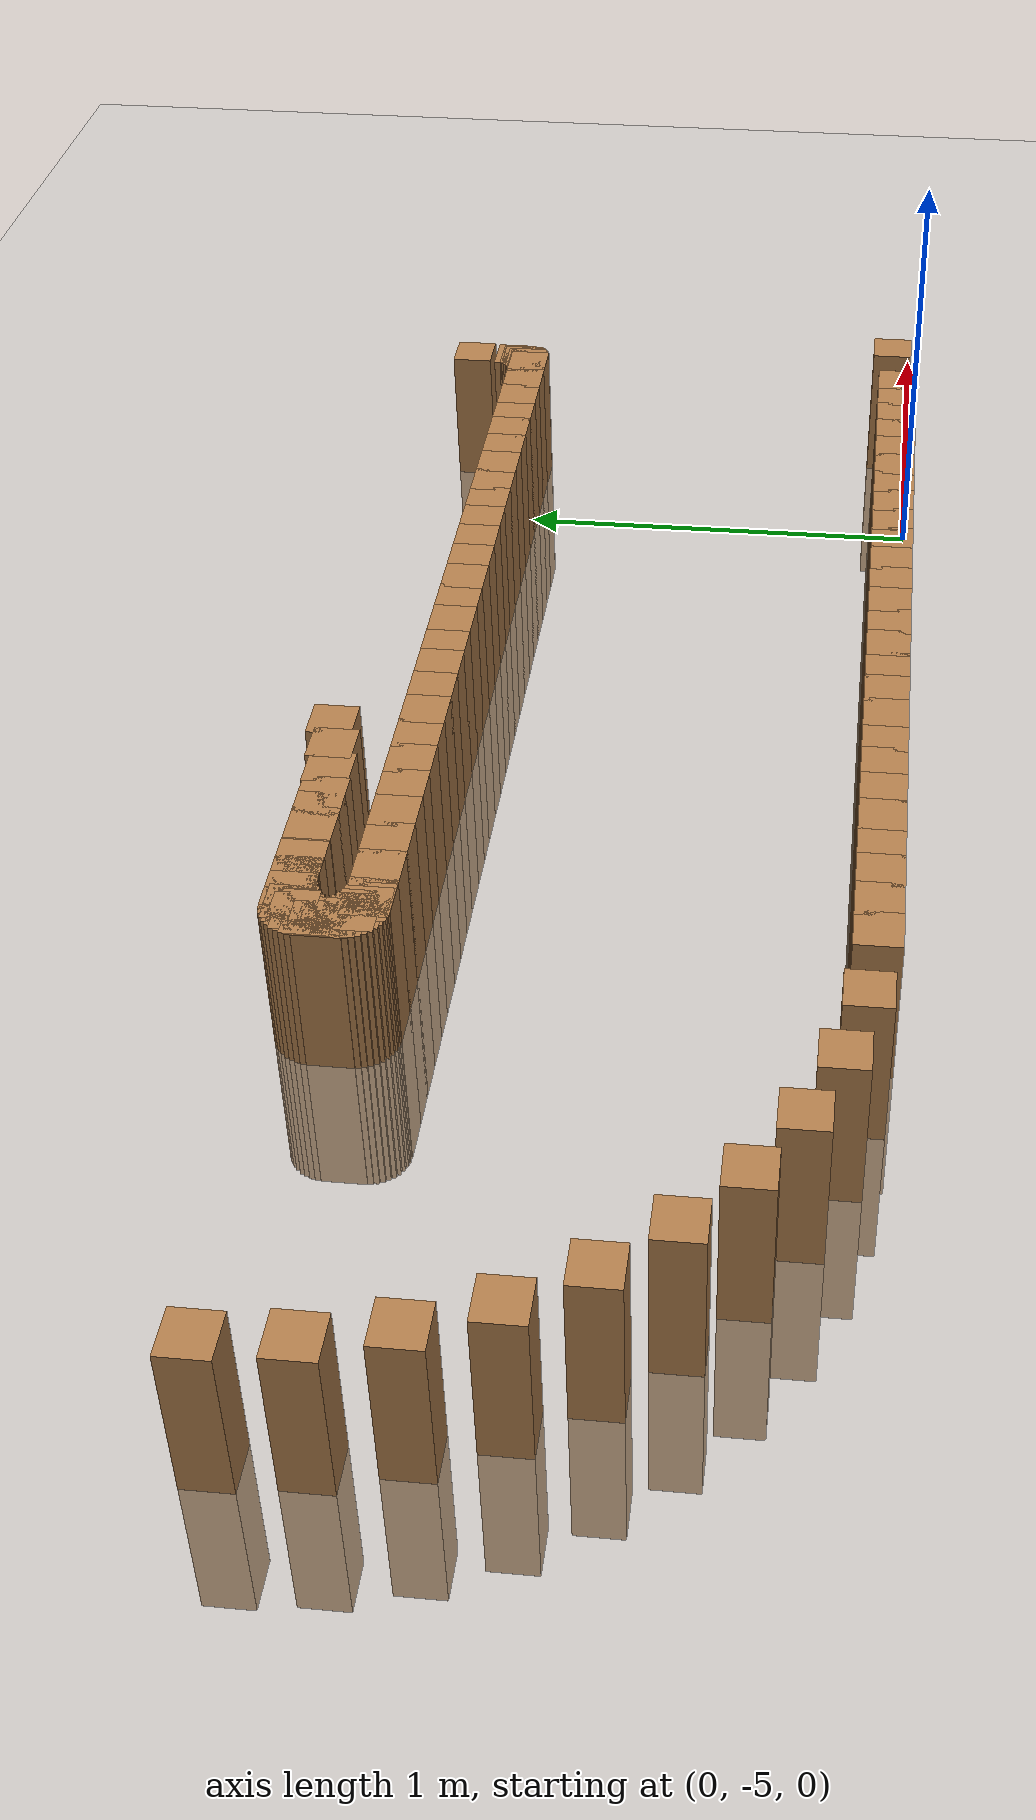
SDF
<sdf version="1.6">
 <world name="default">
  <model name="ground_plane">
   <static>1</static>
   <link name="link">
    <collision name="collision">
     <geometry><plane><normal>0 0 1</normal><size>100 100</size></plane></geometry>
     <surface><friction><ode><mu>100</mu><mu2>50</mu2></ode></friction></surface>
    </collision>
    <visual name="visual">
     <cast_shadows>0</cast_shadows>
     <geometry><plane><normal>0 0 1</normal><size>100 100</size></plane></geometry>
     <material>
      <script><uri>file://media/materials/scripts/gazebo.material</uri><name>Gazebo/Grey</name></script>
     </material>
    </visual>
   </link>
  </model>
  <model name="track">
   <link name="inner_389">
    <pose>-1.399631 -3.767061 0.000000 0 -0 0</pose>
    <collision name="collision"><geometry><box><size>0.1 0.1 0.7</size></box></geometry></collision>
    <visual name="visual">
     <geometry><box><size>0.1 0.1 0.7</size></box></geometry>
     <material>
      <script><uri>file://media/materials/scripts/gazebo.material</uri><name>Gazebo/Wood</name></script>
     </material>
    </visual>
   </link>
   <link name="inner_390">
    <pose>-1.481734 -3.783823 0.000000 0 -0 0</pose>
    <collision name="collision"><geometry><box><size>0.1 0.1 0.7</size></box></geometry></collision>
    <visual name="visual">
     <geometry><box><size>0.1 0.1 0.7</size></box></geometry>
     <material>
      <script><uri>file://media/materials/scripts/gazebo.material</uri><name>Gazebo/Wood</name></script>
     </material>
    </visual>
   </link>
   <link name="inner_391">
    <pose>-1.564920 -3.793923 0.000000 0 -0 0</pose>
    <collision name="collision"><geometry><box><size>0.1 0.1 0.7</size></box></geometry></collision>
    <visual name="visual">
     <geometry><box><size>0.1 0.1 0.7</size></box></geometry>
     <material>
      <script><uri>file://media/materials/scripts/gazebo.material</uri><name>Gazebo/Wood</name></script>
     </material>
    </visual>
   </link>
   <link name="inner_392">
    <pose>-1.648649 -3.797297 0.000000 0 -0 0</pose>
    <collision name="collision"><geometry><box><size>0.1 0.1 0.7</size></box></geometry></collision>
    <visual name="visual">
     <geometry><box><size>0.1 0.1 0.7</size></box></geometry>
     <material>
      <script><uri>file://media/materials/scripts/gazebo.material</uri><name>Gazebo/Wood</name></script>
     </material>
    </visual>
   </link>
   <link name="inner_393">
    <pose>-1.700450 -3.797297 0.000000 0 -0 0</pose>
    <collision name="collision"><geometry><box><size>0.1 0.1 0.7</size></box></geometry></collision>
    <visual name="visual">
     <geometry><box><size>0.1 0.1 0.7</size></box></geometry>
     <material>
      <script><uri>file://media/materials/scripts/gazebo.material</uri><name>Gazebo/Wood</name></script>
     </material>
    </visual>
   </link>
   <link name="inner_394">
    <pose>-1.752252 -3.797297 0.000000 0 -0 0</pose>
    <collision name="collision"><geometry><box><size>0.1 0.1 0.7</size></box></geometry></collision>
    <visual name="visual">
     <geometry><box><size>0.1 0.1 0.7</size></box></geometry>
     <material>
      <script><uri>file://media/materials/scripts/gazebo.material</uri><name>Gazebo/Wood</name></script>
     </material>
    </visual>
   </link>
   <link name="inner_395">
    <pose>-1.804054 -3.797297 0.000000 0 -0 0</pose>
    <collision name="collision"><geometry><box><size>0.1 0.1 0.7</size></box></geometry></collision>
    <visual name="visual">
     <geometry><box><size>0.1 0.1 0.7</size></box></geometry>
     <material>
      <script><uri>file://media/materials/scripts/gazebo.material</uri><name>Gazebo/Wood</name></script>
     </material>
    </visual>
   </link>
   <link name="inner_396">
    <pose>-1.855856 -3.797297 0.000000 0 -0 0</pose>
    <collision name="collision"><geometry><box><size>0.1 0.1 0.7</size></box></geometry></collision>
    <visual name="visual">
     <geometry><box><size>0.1 0.1 0.7</size></box></geometry>
     <material>
      <script><uri>file://media/materials/scripts/gazebo.material</uri><name>Gazebo/Wood</name></script>
     </material>
    </visual>
   </link>
   <link name="inner_397">
    <pose>-1.907658 -3.797297 0.000000 0 -0 0</pose>
    <collision name="collision"><geometry><box><size>0.1 0.1 0.7</size></box></geometry></collision>
    <visual name="visual">
     <geometry><box><size>0.1 0.1 0.7</size></box></geometry>
     <material>
      <script><uri>file://media/materials/scripts/gazebo.material</uri><name>Gazebo/Wood</name></script>
     </material>
    </visual>
   </link>
   <link name="inner_398">
    <pose>-1.959459 -3.797297 0.000000 0 -0 0</pose>
    <collision name="collision"><geometry><box><size>0.1 0.1 0.7</size></box></geometry></collision>
    <visual name="visual">
     <geometry><box><size>0.1 0.1 0.7</size></box></geometry>
     <material>
      <script><uri>file://media/materials/scripts/gazebo.material</uri><name>Gazebo/Wood</name></script>
     </material>
    </visual>
   </link>
   <link name="inner_399">
    <pose>-1.972143 -3.798296 0.000000 0 -0 0</pose>
    <collision name="collision"><geometry><box><size>0.1 0.1 0.7</size></box></geometry></collision>
    <visual name="visual">
     <geometry><box><size>0.1 0.1 0.7</size></box></geometry>
     <material>
      <script><uri>file://media/materials/scripts/gazebo.material</uri><name>Gazebo/Wood</name></script>
     </material>
    </visual>
   </link>
   <link name="inner_400">
    <pose>-1.984515 -3.801266 0.000000 0 -0 0</pose>
    <collision name="collision"><geometry><box><size>0.1 0.1 0.7</size></box></geometry></collision>
    <visual name="visual">
     <geometry><box><size>0.1 0.1 0.7</size></box></geometry>
     <material>
      <script><uri>file://media/materials/scripts/gazebo.material</uri><name>Gazebo/Wood</name></script>
     </material>
    </visual>
   </link>
   <link name="inner_401">
    <pose>-1.996269 -3.806135 0.000000 0 -0 0</pose>
    <collision name="collision"><geometry><box><size>0.1 0.1 0.7</size></box></geometry></collision>
    <visual name="visual">
     <geometry><box><size>0.1 0.1 0.7</size></box></geometry>
     <material>
      <script><uri>file://media/materials/scripts/gazebo.material</uri><name>Gazebo/Wood</name></script>
     </material>
    </visual>
   </link>
   <link name="inner_402">
    <pose>-2.007118 -3.812782 0.000000 0 -0 0</pose>
    <collision name="collision"><geometry><box><size>0.1 0.1 0.7</size></box></geometry></collision>
    <visual name="visual">
     <geometry><box><size>0.1 0.1 0.7</size></box></geometry>
     <material>
      <script><uri>file://media/materials/scripts/gazebo.material</uri><name>Gazebo/Wood</name></script>
     </material>
    </visual>
   </link>
   <link name="inner_403">
    <pose>-2.016792 -3.821045 0.000000 0 -0 0</pose>
    <collision name="collision"><geometry><box><size>0.1 0.1 0.7</size></box></geometry></collision>
    <visual name="visual">
     <geometry><box><size>0.1 0.1 0.7</size></box></geometry>
     <material>
      <script><uri>file://media/materials/scripts/gazebo.material</uri><name>Gazebo/Wood</name></script>
     </material>
    </visual>
   </link>
   <link name="inner_404">
    <pose>-2.025055 -3.830720 0.000000 0 -0 0</pose>
    <collision name="collision"><geometry><box><size>0.1 0.1 0.7</size></box></geometry></collision>
    <visual name="visual">
     <geometry><box><size>0.1 0.1 0.7</size></box></geometry>
     <material>
      <script><uri>file://media/materials/scripts/gazebo.material</uri><name>Gazebo/Wood</name></script>
     </material>
    </visual>
   </link>
   <link name="inner_405">
    <pose>-2.031703 -3.841568 0.000000 0 -0 0</pose>
    <collision name="collision"><geometry><box><size>0.1 0.1 0.7</size></box></geometry></collision>
    <visual name="visual">
     <geometry><box><size>0.1 0.1 0.7</size></box></geometry>
     <material>
      <script><uri>file://media/materials/scripts/gazebo.material</uri><name>Gazebo/Wood</name></script>
     </material>
    </visual>
   </link>
   <link name="inner_406">
    <pose>-2.036572 -3.853323 0.000000 0 -0 0</pose>
    <collision name="collision"><geometry><box><size>0.1 0.1 0.7</size></box></geometry></collision>
    <visual name="visual">
     <geometry><box><size>0.1 0.1 0.7</size></box></geometry>
     <material>
      <script><uri>file://media/materials/scripts/gazebo.material</uri><name>Gazebo/Wood</name></script>
     </material>
    </visual>
   </link>
   <link name="inner_407">
    <pose>-2.039542 -3.865695 0.000000 0 -0 0</pose>
    <collision name="collision"><geometry><box><size>0.1 0.1 0.7</size></box></geometry></collision>
    <visual name="visual">
     <geometry><box><size>0.1 0.1 0.7</size></box></geometry>
     <material>
      <script><uri>file://media/materials/scripts/gazebo.material</uri><name>Gazebo/Wood</name></script>
     </material>
    </visual>
   </link>
   <link name="inner_408">
    <pose>-2.040541 -3.878378 0.000000 0 -0 0</pose>
    <collision name="collision"><geometry><box><size>0.1 0.1 0.7</size></box></geometry></collision>
    <visual name="visual">
     <geometry><box><size>0.1 0.1 0.7</size></box></geometry>
     <material>
      <script><uri>file://media/materials/scripts/gazebo.material</uri><name>Gazebo/Wood</name></script>
     </material>
    </visual>
   </link>
   <link name="inner_409">
    <pose>-2.039542 -3.891062 0.000000 0 -0 0</pose>
    <collision name="collision"><geometry><box><size>0.1 0.1 0.7</size></box></geometry></collision>
    <visual name="visual">
     <geometry><box><size>0.1 0.1 0.7</size></box></geometry>
     <material>
      <script><uri>file://media/materials/scripts/gazebo.material</uri><name>Gazebo/Wood</name></script>
     </material>
    </visual>
   </link>
   <link name="inner_410">
    <pose>-2.036572 -3.903434 0.000000 0 -0 0</pose>
    <collision name="collision"><geometry><box><size>0.1 0.1 0.7</size></box></geometry></collision>
    <visual name="visual">
     <geometry><box><size>0.1 0.1 0.7</size></box></geometry>
     <material>
      <script><uri>file://media/materials/scripts/gazebo.material</uri><name>Gazebo/Wood</name></script>
     </material>
    </visual>
   </link>
   <link name="inner_411">
    <pose>-2.031703 -3.915188 0.000000 0 -0 0</pose>
    <collision name="collision"><geometry><box><size>0.1 0.1 0.7</size></box></geometry></collision>
    <visual name="visual">
     <geometry><box><size>0.1 0.1 0.7</size></box></geometry>
     <material>
      <script><uri>file://media/materials/scripts/gazebo.material</uri><name>Gazebo/Wood</name></script>
     </material>
    </visual>
   </link>
   <link name="inner_412">
    <pose>-2.025055 -3.926037 0.000000 0 -0 0</pose>
    <collision name="collision"><geometry><box><size>0.1 0.1 0.7</size></box></geometry></collision>
    <visual name="visual">
     <geometry><box><size>0.1 0.1 0.7</size></box></geometry>
     <material>
      <script><uri>file://media/materials/scripts/gazebo.material</uri><name>Gazebo/Wood</name></script>
     </material>
    </visual>
   </link>
   <link name="inner_413">
    <pose>-2.016792 -3.935711 0.000000 0 -0 0</pose>
    <collision name="collision"><geometry><box><size>0.1 0.1 0.7</size></box></geometry></collision>
    <visual name="visual">
     <geometry><box><size>0.1 0.1 0.7</size></box></geometry>
     <material>
      <script><uri>file://media/materials/scripts/gazebo.material</uri><name>Gazebo/Wood</name></script>
     </material>
    </visual>
   </link>
   <link name="inner_414">
    <pose>-2.007118 -3.943974 0.000000 0 -0 0</pose>
    <collision name="collision"><geometry><box><size>0.1 0.1 0.7</size></box></geometry></collision>
    <visual name="visual">
     <geometry><box><size>0.1 0.1 0.7</size></box></geometry>
     <material>
      <script><uri>file://media/materials/scripts/gazebo.material</uri><name>Gazebo/Wood</name></script>
     </material>
    </visual>
   </link>
   <link name="inner_415">
    <pose>-1.996269 -3.950622 0.000000 0 -0 0</pose>
    <collision name="collision"><geometry><box><size>0.1 0.1 0.7</size></box></geometry></collision>
    <visual name="visual">
     <geometry><box><size>0.1 0.1 0.7</size></box></geometry>
     <material>
      <script><uri>file://media/materials/scripts/gazebo.material</uri><name>Gazebo/Wood</name></script>
     </material>
    </visual>
   </link>
   <link name="inner_416">
    <pose>-1.984515 -3.955491 0.000000 0 -0 0</pose>
    <collision name="collision"><geometry><box><size>0.1 0.1 0.7</size></box></geometry></collision>
    <visual name="visual">
     <geometry><box><size>0.1 0.1 0.7</size></box></geometry>
     <material>
      <script><uri>file://media/materials/scripts/gazebo.material</uri><name>Gazebo/Wood</name></script>
     </material>
    </visual>
   </link>
   <link name="inner_417">
    <pose>-1.972143 -3.958461 0.000000 0 -0 0</pose>
    <collision name="collision"><geometry><box><size>0.1 0.1 0.7</size></box></geometry></collision>
    <visual name="visual">
     <geometry><box><size>0.1 0.1 0.7</size></box></geometry>
     <material>
      <script><uri>file://media/materials/scripts/gazebo.material</uri><name>Gazebo/Wood</name></script>
     </material>
    </visual>
   </link>
   <link name="inner_418">
    <pose>-1.959459 -3.959459 0.000000 0 -0 0</pose>
    <collision name="collision"><geometry><box><size>0.1 0.1 0.7</size></box></geometry></collision>
    <visual name="visual">
     <geometry><box><size>0.1 0.1 0.7</size></box></geometry>
     <material>
      <script><uri>file://media/materials/scripts/gazebo.material</uri><name>Gazebo/Wood</name></script>
     </material>
    </visual>
   </link>
   <link name="inner_419">
    <pose>-1.871351 -3.959459 0.000000 0 -0 0</pose>
    <collision name="collision"><geometry><box><size>0.1 0.1 0.7</size></box></geometry></collision>
    <visual name="visual">
     <geometry><box><size>0.1 0.1 0.7</size></box></geometry>
     <material>
      <script><uri>file://media/materials/scripts/gazebo.material</uri><name>Gazebo/Wood</name></script>
     </material>
    </visual>
   </link>
   <link name="inner_420">
    <pose>-1.783243 -3.959459 0.000000 0 -0 0</pose>
    <collision name="collision"><geometry><box><size>0.1 0.1 0.7</size></box></geometry></collision>
    <visual name="visual">
     <geometry><box><size>0.1 0.1 0.7</size></box></geometry>
     <material>
      <script><uri>file://media/materials/scripts/gazebo.material</uri><name>Gazebo/Wood</name></script>
     </material>
    </visual>
   </link>
   <link name="inner_421">
    <pose>-1.695135 -3.959459 0.000000 0 -0 0</pose>
    <collision name="collision"><geometry><box><size>0.1 0.1 0.7</size></box></geometry></collision>
    <visual name="visual">
     <geometry><box><size>0.1 0.1 0.7</size></box></geometry>
     <material>
      <script><uri>file://media/materials/scripts/gazebo.material</uri><name>Gazebo/Wood</name></script>
     </material>
    </visual>
   </link>
   <link name="inner_422">
    <pose>-1.607027 -3.959459 0.000000 0 -0 0</pose>
    <collision name="collision"><geometry><box><size>0.1 0.1 0.7</size></box></geometry></collision>
    <visual name="visual">
     <geometry><box><size>0.1 0.1 0.7</size></box></geometry>
     <material>
      <script><uri>file://media/materials/scripts/gazebo.material</uri><name>Gazebo/Wood</name></script>
     </material>
    </visual>
   </link>
   <link name="inner_423">
    <pose>-1.518919 -3.959459 0.000000 0 -0 0</pose>
    <collision name="collision"><geometry><box><size>0.1 0.1 0.7</size></box></geometry></collision>
    <visual name="visual">
     <geometry><box><size>0.1 0.1 0.7</size></box></geometry>
     <material>
      <script><uri>file://media/materials/scripts/gazebo.material</uri><name>Gazebo/Wood</name></script>
     </material>
    </visual>
   </link>
   <link name="inner_424">
    <pose>-1.430811 -3.959459 0.000000 0 -0 0</pose>
    <collision name="collision"><geometry><box><size>0.1 0.1 0.7</size></box></geometry></collision>
    <visual name="visual">
     <geometry><box><size>0.1 0.1 0.7</size></box></geometry>
     <material>
      <script><uri>file://media/materials/scripts/gazebo.material</uri><name>Gazebo/Wood</name></script>
     </material>
    </visual>
   </link>
   <link name="inner_425">
    <pose>-1.342703 -3.959459 0.000000 0 -0 0</pose>
    <collision name="collision"><geometry><box><size>0.1 0.1 0.7</size></box></geometry></collision>
    <visual name="visual">
     <geometry><box><size>0.1 0.1 0.7</size></box></geometry>
     <material>
      <script><uri>file://media/materials/scripts/gazebo.material</uri><name>Gazebo/Wood</name></script>
     </material>
    </visual>
   </link>
   <link name="inner_426">
    <pose>-1.254595 -3.959459 0.000000 0 -0 0</pose>
    <collision name="collision"><geometry><box><size>0.1 0.1 0.7</size></box></geometry></collision>
    <visual name="visual">
     <geometry><box><size>0.1 0.1 0.7</size></box></geometry>
     <material>
      <script><uri>file://media/materials/scripts/gazebo.material</uri><name>Gazebo/Wood</name></script>
     </material>
    </visual>
   </link>
   <link name="inner_427">
    <pose>-1.166486 -3.959459 0.000000 0 -0 0</pose>
    <collision name="collision"><geometry><box><size>0.1 0.1 0.7</size></box></geometry></collision>
    <visual name="visual">
     <geometry><box><size>0.1 0.1 0.7</size></box></geometry>
     <material>
      <script><uri>file://media/materials/scripts/gazebo.material</uri><name>Gazebo/Wood</name></script>
     </material>
    </visual>
   </link>
   <link name="inner_428">
    <pose>-1.078378 -3.959459 0.000000 0 -0 0</pose>
    <collision name="collision"><geometry><box><size>0.1 0.1 0.7</size></box></geometry></collision>
    <visual name="visual">
     <geometry><box><size>0.1 0.1 0.7</size></box></geometry>
     <material>
      <script><uri>file://media/materials/scripts/gazebo.material</uri><name>Gazebo/Wood</name></script>
     </material>
    </visual>
   </link>
   <link name="inner_429">
    <pose>-0.990270 -3.959459 0.000000 0 -0 0</pose>
    <collision name="collision"><geometry><box><size>0.1 0.1 0.7</size></box></geometry></collision>
    <visual name="visual">
     <geometry><box><size>0.1 0.1 0.7</size></box></geometry>
     <material>
      <script><uri>file://media/materials/scripts/gazebo.material</uri><name>Gazebo/Wood</name></script>
     </material>
    </visual>
   </link>
   <link name="inner_430">
    <pose>-0.902162 -3.959459 0.000000 0 -0 0</pose>
    <collision name="collision"><geometry><box><size>0.1 0.1 0.7</size></box></geometry></collision>
    <visual name="visual">
     <geometry><box><size>0.1 0.1 0.7</size></box></geometry>
     <material>
      <script><uri>file://media/materials/scripts/gazebo.material</uri><name>Gazebo/Wood</name></script>
     </material>
    </visual>
   </link>
   <link name="inner_431">
    <pose>-0.814054 -3.959459 0.000000 0 -0 0</pose>
    <collision name="collision"><geometry><box><size>0.1 0.1 0.7</size></box></geometry></collision>
    <visual name="visual">
     <geometry><box><size>0.1 0.1 0.7</size></box></geometry>
     <material>
      <script><uri>file://media/materials/scripts/gazebo.material</uri><name>Gazebo/Wood</name></script>
     </material>
    </visual>
   </link>
   <link name="inner_432">
    <pose>-0.725946 -3.959459 0.000000 0 -0 0</pose>
    <collision name="collision"><geometry><box><size>0.1 0.1 0.7</size></box></geometry></collision>
    <visual name="visual">
     <geometry><box><size>0.1 0.1 0.7</size></box></geometry>
     <material>
      <script><uri>file://media/materials/scripts/gazebo.material</uri><name>Gazebo/Wood</name></script>
     </material>
    </visual>
   </link>
   <link name="inner_433">
    <pose>-0.637838 -3.959459 0.000000 0 -0 0</pose>
    <collision name="collision"><geometry><box><size>0.1 0.1 0.7</size></box></geometry></collision>
    <visual name="visual">
     <geometry><box><size>0.1 0.1 0.7</size></box></geometry>
     <material>
      <script><uri>file://media/materials/scripts/gazebo.material</uri><name>Gazebo/Wood</name></script>
     </material>
    </visual>
   </link>
   <link name="inner_434">
    <pose>-0.549730 -3.959459 0.000000 0 -0 0</pose>
    <collision name="collision"><geometry><box><size>0.1 0.1 0.7</size></box></geometry></collision>
    <visual name="visual">
     <geometry><box><size>0.1 0.1 0.7</size></box></geometry>
     <material>
      <script><uri>file://media/materials/scripts/gazebo.material</uri><name>Gazebo/Wood</name></script>
     </material>
    </visual>
   </link>
   <link name="inner_435">
    <pose>-0.461622 -3.959459 0.000000 0 -0 0</pose>
    <collision name="collision"><geometry><box><size>0.1 0.1 0.7</size></box></geometry></collision>
    <visual name="visual">
     <geometry><box><size>0.1 0.1 0.7</size></box></geometry>
     <material>
      <script><uri>file://media/materials/scripts/gazebo.material</uri><name>Gazebo/Wood</name></script>
     </material>
    </visual>
   </link>
   <link name="inner_436">
    <pose>-0.373514 -3.959459 0.000000 0 -0 0</pose>
    <collision name="collision"><geometry><box><size>0.1 0.1 0.7</size></box></geometry></collision>
    <visual name="visual">
     <geometry><box><size>0.1 0.1 0.7</size></box></geometry>
     <material>
      <script><uri>file://media/materials/scripts/gazebo.material</uri><name>Gazebo/Wood</name></script>
     </material>
    </visual>
   </link>
   <link name="inner_437">
    <pose>-0.285405 -3.959459 0.000000 0 -0 0</pose>
    <collision name="collision"><geometry><box><size>0.1 0.1 0.7</size></box></geometry></collision>
    <visual name="visual">
     <geometry><box><size>0.1 0.1 0.7</size></box></geometry>
     <material>
      <script><uri>file://media/materials/scripts/gazebo.material</uri><name>Gazebo/Wood</name></script>
     </material>
    </visual>
   </link>
   <link name="inner_438">
    <pose>-0.197297 -3.959459 0.000000 0 -0 0</pose>
    <collision name="collision"><geometry><box><size>0.1 0.1 0.7</size></box></geometry></collision>
    <visual name="visual">
     <geometry><box><size>0.1 0.1 0.7</size></box></geometry>
     <material>
      <script><uri>file://media/materials/scripts/gazebo.material</uri><name>Gazebo/Wood</name></script>
     </material>
    </visual>
   </link>
   <link name="inner_439">
    <pose>-0.109189 -3.959459 0.000000 0 -0 0</pose>
    <collision name="collision"><geometry><box><size>0.1 0.1 0.7</size></box></geometry></collision>
    <visual name="visual">
     <geometry><box><size>0.1 0.1 0.7</size></box></geometry>
     <material>
      <script><uri>file://media/materials/scripts/gazebo.material</uri><name>Gazebo/Wood</name></script>
     </material>
    </visual>
   </link>
   <link name="inner_440">
    <pose>-0.021081 -3.959459 0.000000 0 -0 0</pose>
    <collision name="collision"><geometry><box><size>0.1 0.1 0.7</size></box></geometry></collision>
    <visual name="visual">
     <geometry><box><size>0.1 0.1 0.7</size></box></geometry>
     <material>
      <script><uri>file://media/materials/scripts/gazebo.material</uri><name>Gazebo/Wood</name></script>
     </material>
    </visual>
   </link>
   <link name="inner_441">
    <pose>0.067027 -3.959459 0.000000 0 -0 0</pose>
    <collision name="collision"><geometry><box><size>0.1 0.1 0.7</size></box></geometry></collision>
    <visual name="visual">
     <geometry><box><size>0.1 0.1 0.7</size></box></geometry>
     <material>
      <script><uri>file://media/materials/scripts/gazebo.material</uri><name>Gazebo/Wood</name></script>
     </material>
    </visual>
   </link>
   <link name="inner_442">
    <pose>0.155135 -3.959459 0.000000 0 -0 0</pose>
    <collision name="collision"><geometry><box><size>0.1 0.1 0.7</size></box></geometry></collision>
    <visual name="visual">
     <geometry><box><size>0.1 0.1 0.7</size></box></geometry>
     <material>
      <script><uri>file://media/materials/scripts/gazebo.material</uri><name>Gazebo/Wood</name></script>
     </material>
    </visual>
   </link>
   <link name="inner_443">
    <pose>0.243243 -3.959459 0.000000 0 -0 0</pose>
    <collision name="collision"><geometry><box><size>0.1 0.1 0.7</size></box></geometry></collision>
    <visual name="visual">
     <geometry><box><size>0.1 0.1 0.7</size></box></geometry>
     <material>
      <script><uri>file://media/materials/scripts/gazebo.material</uri><name>Gazebo/Wood</name></script>
     </material>
    </visual>
   </link>
   <link name="inner_444">
    <pose>0.251094 -3.958844 0.000000 0 -0 0</pose>
    <collision name="collision"><geometry><box><size>0.1 0.1 0.7</size></box></geometry></collision>
    <visual name="visual">
     <geometry><box><size>0.1 0.1 0.7</size></box></geometry>
     <material>
      <script><uri>file://media/materials/scripts/gazebo.material</uri><name>Gazebo/Wood</name></script>
     </material>
    </visual>
   </link>
   <link name="inner_445">
    <pose>0.259812 -3.956474 0.000000 0 -0 0</pose>
    <collision name="collision"><geometry><box><size>0.1 0.1 0.7</size></box></geometry></collision>
    <visual name="visual">
     <geometry><box><size>0.1 0.1 0.7</size></box></geometry>
     <material>
      <script><uri>file://media/materials/scripts/gazebo.material</uri><name>Gazebo/Wood</name></script>
     </material>
    </visual>
   </link>
   <link name="inner_446">
    <pose>0.263514 -3.954028 0.000000 0 -0 0</pose>
    <collision name="collision"><geometry><box><size>0.1 0.1 0.7</size></box></geometry></collision>
    <visual name="visual">
     <geometry><box><size>0.1 0.1 0.7</size></box></geometry>
     <material>
      <script><uri>file://media/materials/scripts/gazebo.material</uri><name>Gazebo/Wood</name></script>
     </material>
    </visual>
   </link>
   <link name="inner_447">
    <pose>0.269302 -3.949975 0.000000 0 -0 0</pose>
    <collision name="collision"><geometry><box><size>0.1 0.1 0.7</size></box></geometry></collision>
    <visual name="visual">
     <geometry><box><size>0.1 0.1 0.7</size></box></geometry>
     <material>
      <script><uri>file://media/materials/scripts/gazebo.material</uri><name>Gazebo/Wood</name></script>
     </material>
    </visual>
   </link>
   <link name="inner_448">
    <pose>0.274299 -3.944978 0.000000 0 -0 0</pose>
    <collision name="collision"><geometry><box><size>0.1 0.1 0.7</size></box></geometry></collision>
    <visual name="visual">
     <geometry><box><size>0.1 0.1 0.7</size></box></geometry>
     <material>
      <script><uri>file://media/materials/scripts/gazebo.material</uri><name>Gazebo/Wood</name></script>
     </material>
    </visual>
   </link>
   <link name="inner_449">
    <pose>0.278352 -3.939189 0.000000 0 -0 0</pose>
    <collision name="collision"><geometry><box><size>0.1 0.1 0.7</size></box></geometry></collision>
    <visual name="visual">
     <geometry><box><size>0.1 0.1 0.7</size></box></geometry>
     <material>
      <script><uri>file://media/materials/scripts/gazebo.material</uri><name>Gazebo/Wood</name></script>
     </material>
    </visual>
   </link>
   <link name="inner_450">
    <pose>0.278636 -3.938190 0.000000 0 -0 0</pose>
    <collision name="collision"><geometry><box><size>0.1 0.1 0.7</size></box></geometry></collision>
    <visual name="visual">
     <geometry><box><size>0.1 0.1 0.7</size></box></geometry>
     <material>
      <script><uri>file://media/materials/scripts/gazebo.material</uri><name>Gazebo/Wood</name></script>
     </material>
    </visual>
   </link>
   <link name="inner_451">
    <pose>0.282357 -3.934067 0.000000 0 -0 0</pose>
    <collision name="collision"><geometry><box><size>0.1 0.1 0.7</size></box></geometry></collision>
    <visual name="visual">
     <geometry><box><size>0.1 0.1 0.7</size></box></geometry>
     <material>
      <script><uri>file://media/materials/scripts/gazebo.material</uri><name>Gazebo/Wood</name></script>
     </material>
    </visual>
   </link>
   <link name="inner_452">
    <pose>0.285405 -3.918919 0.000000 0 -0 0</pose>
    <collision name="collision"><geometry><box><size>0.1 0.1 0.7</size></box></geometry></collision>
    <visual name="visual">
     <geometry><box><size>0.1 0.1 0.7</size></box></geometry>
     <material>
      <script><uri>file://media/materials/scripts/gazebo.material</uri><name>Gazebo/Wood</name></script>
     </material>
    </visual>
   </link>
   <link name="inner_453">
    <pose>0.289883 -3.806417 0.000000 0 -0 0</pose>
    <collision name="collision"><geometry><box><size>0.1 0.1 0.7</size></box></geometry></collision>
    <visual name="visual">
     <geometry><box><size>0.1 0.1 0.7</size></box></geometry>
     <material>
      <script><uri>file://media/materials/scripts/gazebo.material</uri><name>Gazebo/Wood</name></script>
     </material>
    </visual>
   </link>
   <link name="outer_408">
    <pose>-3.040541 -3.878378 0.000000 0 -0 0</pose>
    <collision name="collision"><geometry><box><size>0.1 0.1 0.7</size></box></geometry></collision>
    <visual name="visual">
     <geometry><box><size>0.1 0.1 0.7</size></box></geometry>
     <material>
      <script><uri>file://media/materials/scripts/gazebo.material</uri><name>Gazebo/Wood</name></script>
     </material>
    </visual>
   </link>
   <link name="outer_409">
    <pose>-3.027231 -4.047497 0.000000 0 -0 0</pose>
    <collision name="collision"><geometry><box><size>0.1 0.1 0.7</size></box></geometry></collision>
    <visual name="visual">
     <geometry><box><size>0.1 0.1 0.7</size></box></geometry>
     <material>
      <script><uri>file://media/materials/scripts/gazebo.material</uri><name>Gazebo/Wood</name></script>
     </material>
    </visual>
   </link>
   <link name="outer_410">
    <pose>-2.987629 -4.212451 0.000000 0 -0 0</pose>
    <collision name="collision"><geometry><box><size>0.1 0.1 0.7</size></box></geometry></collision>
    <visual name="visual">
     <geometry><box><size>0.1 0.1 0.7</size></box></geometry>
     <material>
      <script><uri>file://media/materials/scripts/gazebo.material</uri><name>Gazebo/Wood</name></script>
     </material>
    </visual>
   </link>
   <link name="outer_411">
    <pose>-2.922710 -4.369179 0.000000 0 -0 0</pose>
    <collision name="collision"><geometry><box><size>0.1 0.1 0.7</size></box></geometry></collision>
    <visual name="visual">
     <geometry><box><size>0.1 0.1 0.7</size></box></geometry>
     <material>
      <script><uri>file://media/materials/scripts/gazebo.material</uri><name>Gazebo/Wood</name></script>
     </material>
    </visual>
   </link>
   <link name="outer_412">
    <pose>-2.834072 -4.513822 0.000000 0 -0 0</pose>
    <collision name="collision"><geometry><box><size>0.1 0.1 0.7</size></box></geometry></collision>
    <visual name="visual">
     <geometry><box><size>0.1 0.1 0.7</size></box></geometry>
     <material>
      <script><uri>file://media/materials/scripts/gazebo.material</uri><name>Gazebo/Wood</name></script>
     </material>
    </visual>
   </link>
   <link name="outer_413">
    <pose>-2.723899 -4.642818 0.000000 0 -0 0</pose>
    <collision name="collision"><geometry><box><size>0.1 0.1 0.7</size></box></geometry></collision>
    <visual name="visual">
     <geometry><box><size>0.1 0.1 0.7</size></box></geometry>
     <material>
      <script><uri>file://media/materials/scripts/gazebo.material</uri><name>Gazebo/Wood</name></script>
     </material>
    </visual>
   </link>
   <link name="outer_414">
    <pose>-2.594903 -4.752991 0.000000 0 -0 0</pose>
    <collision name="collision"><geometry><box><size>0.1 0.1 0.7</size></box></geometry></collision>
    <visual name="visual">
     <geometry><box><size>0.1 0.1 0.7</size></box></geometry>
     <material>
      <script><uri>file://media/materials/scripts/gazebo.material</uri><name>Gazebo/Wood</name></script>
     </material>
    </visual>
   </link>
   <link name="outer_415">
    <pose>-2.450260 -4.841629 0.000000 0 -0 0</pose>
    <collision name="collision"><geometry><box><size>0.1 0.1 0.7</size></box></geometry></collision>
    <visual name="visual">
     <geometry><box><size>0.1 0.1 0.7</size></box></geometry>
     <material>
      <script><uri>file://media/materials/scripts/gazebo.material</uri><name>Gazebo/Wood</name></script>
     </material>
    </visual>
   </link>
   <link name="outer_416">
    <pose>-2.293532 -4.906548 0.000000 0 -0 0</pose>
    <collision name="collision"><geometry><box><size>0.1 0.1 0.7</size></box></geometry></collision>
    <visual name="visual">
     <geometry><box><size>0.1 0.1 0.7</size></box></geometry>
     <material>
      <script><uri>file://media/materials/scripts/gazebo.material</uri><name>Gazebo/Wood</name></script>
     </material>
    </visual>
   </link>
   <link name="outer_417">
    <pose>-2.128578 -4.946150 0.000000 0 -0 0</pose>
    <collision name="collision"><geometry><box><size>0.1 0.1 0.7</size></box></geometry></collision>
    <visual name="visual">
     <geometry><box><size>0.1 0.1 0.7</size></box></geometry>
     <material>
      <script><uri>file://media/materials/scripts/gazebo.material</uri><name>Gazebo/Wood</name></script>
     </material>
    </visual>
   </link>
   <link name="outer_418">
    <pose>-1.959459 -4.959459 0.000000 0 -0 0</pose>
    <collision name="collision"><geometry><box><size>0.1 0.1 0.7</size></box></geometry></collision>
    <visual name="visual">
     <geometry><box><size>0.1 0.1 0.7</size></box></geometry>
     <material>
      <script><uri>file://media/materials/scripts/gazebo.material</uri><name>Gazebo/Wood</name></script>
     </material>
    </visual>
   </link>
   <link name="outer_419">
    <pose>-1.871351 -4.959459 0.000000 0 -0 0</pose>
    <collision name="collision"><geometry><box><size>0.1 0.1 0.7</size></box></geometry></collision>
    <visual name="visual">
     <geometry><box><size>0.1 0.1 0.7</size></box></geometry>
     <material>
      <script><uri>file://media/materials/scripts/gazebo.material</uri><name>Gazebo/Wood</name></script>
     </material>
    </visual>
   </link>
   <link name="outer_420">
    <pose>-1.783243 -4.959459 0.000000 0 -0 0</pose>
    <collision name="collision"><geometry><box><size>0.1 0.1 0.7</size></box></geometry></collision>
    <visual name="visual">
     <geometry><box><size>0.1 0.1 0.7</size></box></geometry>
     <material>
      <script><uri>file://media/materials/scripts/gazebo.material</uri><name>Gazebo/Wood</name></script>
     </material>
    </visual>
   </link>
   <link name="outer_421">
    <pose>-1.695135 -4.959459 0.000000 0 -0 0</pose>
    <collision name="collision"><geometry><box><size>0.1 0.1 0.7</size></box></geometry></collision>
    <visual name="visual">
     <geometry><box><size>0.1 0.1 0.7</size></box></geometry>
     <material>
      <script><uri>file://media/materials/scripts/gazebo.material</uri><name>Gazebo/Wood</name></script>
     </material>
    </visual>
   </link>
   <link name="outer_422">
    <pose>-1.607027 -4.959459 0.000000 0 -0 0</pose>
    <collision name="collision"><geometry><box><size>0.1 0.1 0.7</size></box></geometry></collision>
    <visual name="visual">
     <geometry><box><size>0.1 0.1 0.7</size></box></geometry>
     <material>
      <script><uri>file://media/materials/scripts/gazebo.material</uri><name>Gazebo/Wood</name></script>
     </material>
    </visual>
   </link>
   <link name="outer_423">
    <pose>-1.518919 -4.959459 0.000000 0 -0 0</pose>
    <collision name="collision"><geometry><box><size>0.1 0.1 0.7</size></box></geometry></collision>
    <visual name="visual">
     <geometry><box><size>0.1 0.1 0.7</size></box></geometry>
     <material>
      <script><uri>file://media/materials/scripts/gazebo.material</uri><name>Gazebo/Wood</name></script>
     </material>
    </visual>
   </link>
   <link name="outer_424">
    <pose>-1.430811 -4.959459 0.000000 0 -0 0</pose>
    <collision name="collision"><geometry><box><size>0.1 0.1 0.7</size></box></geometry></collision>
    <visual name="visual">
     <geometry><box><size>0.1 0.1 0.7</size></box></geometry>
     <material>
      <script><uri>file://media/materials/scripts/gazebo.material</uri><name>Gazebo/Wood</name></script>
     </material>
    </visual>
   </link>
   <link name="outer_425">
    <pose>-1.342703 -4.959459 0.000000 0 -0 0</pose>
    <collision name="collision"><geometry><box><size>0.1 0.1 0.7</size></box></geometry></collision>
    <visual name="visual">
     <geometry><box><size>0.1 0.1 0.7</size></box></geometry>
     <material>
      <script><uri>file://media/materials/scripts/gazebo.material</uri><name>Gazebo/Wood</name></script>
     </material>
    </visual>
   </link>
   <link name="outer_426">
    <pose>-1.254595 -4.959459 0.000000 0 -0 0</pose>
    <collision name="collision"><geometry><box><size>0.1 0.1 0.7</size></box></geometry></collision>
    <visual name="visual">
     <geometry><box><size>0.1 0.1 0.7</size></box></geometry>
     <material>
      <script><uri>file://media/materials/scripts/gazebo.material</uri><name>Gazebo/Wood</name></script>
     </material>
    </visual>
   </link>
   <link name="outer_427">
    <pose>-1.166486 -4.959459 0.000000 0 -0 0</pose>
    <collision name="collision"><geometry><box><size>0.1 0.1 0.7</size></box></geometry></collision>
    <visual name="visual">
     <geometry><box><size>0.1 0.1 0.7</size></box></geometry>
     <material>
      <script><uri>file://media/materials/scripts/gazebo.material</uri><name>Gazebo/Wood</name></script>
     </material>
    </visual>
   </link>
   <link name="outer_428">
    <pose>-1.078378 -4.959459 0.000000 0 -0 0</pose>
    <collision name="collision"><geometry><box><size>0.1 0.1 0.7</size></box></geometry></collision>
    <visual name="visual">
     <geometry><box><size>0.1 0.1 0.7</size></box></geometry>
     <material>
      <script><uri>file://media/materials/scripts/gazebo.material</uri><name>Gazebo/Wood</name></script>
     </material>
    </visual>
   </link>
   <link name="outer_429">
    <pose>-0.990270 -4.959459 0.000000 0 -0 0</pose>
    <collision name="collision"><geometry><box><size>0.1 0.1 0.7</size></box></geometry></collision>
    <visual name="visual">
     <geometry><box><size>0.1 0.1 0.7</size></box></geometry>
     <material>
      <script><uri>file://media/materials/scripts/gazebo.material</uri><name>Gazebo/Wood</name></script>
     </material>
    </visual>
   </link>
   <link name="outer_430">
    <pose>-0.902162 -4.959459 0.000000 0 -0 0</pose>
    <collision name="collision"><geometry><box><size>0.1 0.1 0.7</size></box></geometry></collision>
    <visual name="visual">
     <geometry><box><size>0.1 0.1 0.7</size></box></geometry>
     <material>
      <script><uri>file://media/materials/scripts/gazebo.material</uri><name>Gazebo/Wood</name></script>
     </material>
    </visual>
   </link>
   <link name="outer_431">
    <pose>-0.814054 -4.959459 0.000000 0 -0 0</pose>
    <collision name="collision"><geometry><box><size>0.1 0.1 0.7</size></box></geometry></collision>
    <visual name="visual">
     <geometry><box><size>0.1 0.1 0.7</size></box></geometry>
     <material>
      <script><uri>file://media/materials/scripts/gazebo.material</uri><name>Gazebo/Wood</name></script>
     </material>
    </visual>
   </link>
   <link name="outer_432">
    <pose>-0.725946 -4.959459 0.000000 0 -0 0</pose>
    <collision name="collision"><geometry><box><size>0.1 0.1 0.7</size></box></geometry></collision>
    <visual name="visual">
     <geometry><box><size>0.1 0.1 0.7</size></box></geometry>
     <material>
      <script><uri>file://media/materials/scripts/gazebo.material</uri><name>Gazebo/Wood</name></script>
     </material>
    </visual>
   </link>
   <link name="outer_433">
    <pose>-0.637838 -4.959459 0.000000 0 -0 0</pose>
    <collision name="collision"><geometry><box><size>0.1 0.1 0.7</size></box></geometry></collision>
    <visual name="visual">
     <geometry><box><size>0.1 0.1 0.7</size></box></geometry>
     <material>
      <script><uri>file://media/materials/scripts/gazebo.material</uri><name>Gazebo/Wood</name></script>
     </material>
    </visual>
   </link>
   <link name="outer_434">
    <pose>-0.549730 -4.959459 0.000000 0 -0 0</pose>
    <collision name="collision"><geometry><box><size>0.1 0.1 0.7</size></box></geometry></collision>
    <visual name="visual">
     <geometry><box><size>0.1 0.1 0.7</size></box></geometry>
     <material>
      <script><uri>file://media/materials/scripts/gazebo.material</uri><name>Gazebo/Wood</name></script>
     </material>
    </visual>
   </link>
   <link name="outer_435">
    <pose>-0.461622 -4.959459 0.000000 0 -0 0</pose>
    <collision name="collision"><geometry><box><size>0.1 0.1 0.7</size></box></geometry></collision>
    <visual name="visual">
     <geometry><box><size>0.1 0.1 0.7</size></box></geometry>
     <material>
      <script><uri>file://media/materials/scripts/gazebo.material</uri><name>Gazebo/Wood</name></script>
     </material>
    </visual>
   </link>
   <link name="outer_436">
    <pose>-0.373514 -4.959459 0.000000 0 -0 0</pose>
    <collision name="collision"><geometry><box><size>0.1 0.1 0.7</size></box></geometry></collision>
    <visual name="visual">
     <geometry><box><size>0.1 0.1 0.7</size></box></geometry>
     <material>
      <script><uri>file://media/materials/scripts/gazebo.material</uri><name>Gazebo/Wood</name></script>
     </material>
    </visual>
   </link>
   <link name="outer_437">
    <pose>-0.285405 -4.959459 0.000000 0 -0 0</pose>
    <collision name="collision"><geometry><box><size>0.1 0.1 0.7</size></box></geometry></collision>
    <visual name="visual">
     <geometry><box><size>0.1 0.1 0.7</size></box></geometry>
     <material>
      <script><uri>file://media/materials/scripts/gazebo.material</uri><name>Gazebo/Wood</name></script>
     </material>
    </visual>
   </link>
   <link name="outer_438">
    <pose>-0.197297 -4.959459 0.000000 0 -0 0</pose>
    <collision name="collision"><geometry><box><size>0.1 0.1 0.7</size></box></geometry></collision>
    <visual name="visual">
     <geometry><box><size>0.1 0.1 0.7</size></box></geometry>
     <material>
      <script><uri>file://media/materials/scripts/gazebo.material</uri><name>Gazebo/Wood</name></script>
     </material>
    </visual>
   </link>
   <link name="outer_439">
    <pose>-0.109189 -4.959459 0.000000 0 -0 0</pose>
    <collision name="collision"><geometry><box><size>0.1 0.1 0.7</size></box></geometry></collision>
    <visual name="visual">
     <geometry><box><size>0.1 0.1 0.7</size></box></geometry>
     <material>
      <script><uri>file://media/materials/scripts/gazebo.material</uri><name>Gazebo/Wood</name></script>
     </material>
    </visual>
   </link>
   <link name="outer_440">
    <pose>-0.021081 -4.959459 0.000000 0 -0 0</pose>
    <collision name="collision"><geometry><box><size>0.1 0.1 0.7</size></box></geometry></collision>
    <visual name="visual">
     <geometry><box><size>0.1 0.1 0.7</size></box></geometry>
     <material>
      <script><uri>file://media/materials/scripts/gazebo.material</uri><name>Gazebo/Wood</name></script>
     </material>
    </visual>
   </link>
   <link name="outer_441">
    <pose>0.067027 -4.959459 0.000000 0 -0 0</pose>
    <collision name="collision"><geometry><box><size>0.1 0.1 0.7</size></box></geometry></collision>
    <visual name="visual">
     <geometry><box><size>0.1 0.1 0.7</size></box></geometry>
     <material>
      <script><uri>file://media/materials/scripts/gazebo.material</uri><name>Gazebo/Wood</name></script>
     </material>
    </visual>
   </link>
   <link name="outer_442">
    <pose>0.155135 -4.959459 0.000000 0 -0 0</pose>
    <collision name="collision"><geometry><box><size>0.1 0.1 0.7</size></box></geometry></collision>
    <visual name="visual">
     <geometry><box><size>0.1 0.1 0.7</size></box></geometry>
     <material>
      <script><uri>file://media/materials/scripts/gazebo.material</uri><name>Gazebo/Wood</name></script>
     </material>
    </visual>
   </link>
   <link name="outer_443">
    <pose>0.243243 -4.959459 0.000000 0 -0 0</pose>
    <collision name="collision"><geometry><box><size>0.1 0.1 0.7</size></box></geometry></collision>
    <visual name="visual">
     <geometry><box><size>0.1 0.1 0.7</size></box></geometry>
     <material>
      <script><uri>file://media/materials/scripts/gazebo.material</uri><name>Gazebo/Wood</name></script>
     </material>
    </visual>
   </link>
   <link name="outer_444">
    <pose>0.423931 -4.943651 0.000000 0 -0 0</pose>
    <collision name="collision"><geometry><box><size>0.1 0.1 0.7</size></box></geometry></collision>
    <visual name="visual">
     <geometry><box><size>0.1 0.1 0.7</size></box></geometry>
     <material>
      <script><uri>file://media/materials/scripts/gazebo.material</uri><name>Gazebo/Wood</name></script>
     </material>
    </visual>
   </link>
   <static>1</static>
  </model>
 </world>
</sdf>
